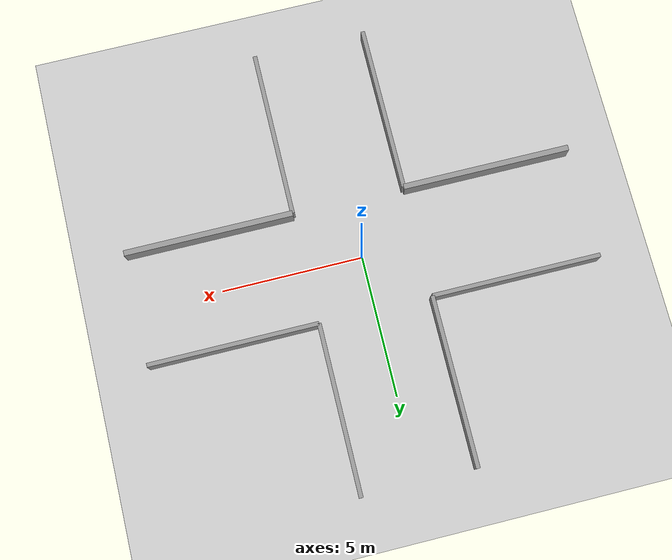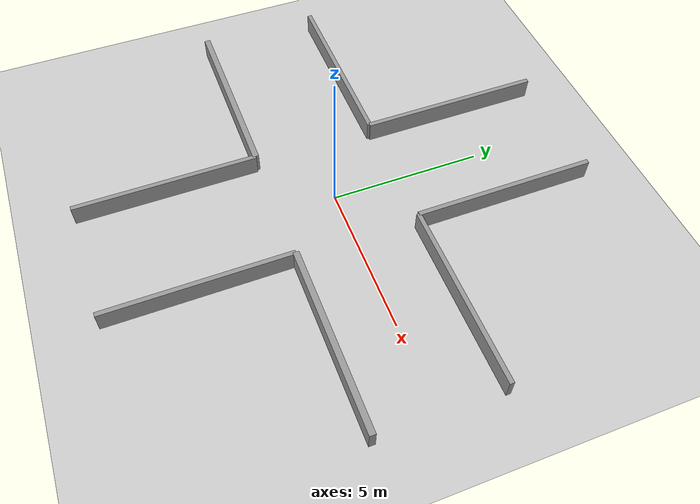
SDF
<sdf version="1.4">
 <world name="default">
  <physics type="ode">
   <gravity>0 0 -9.81</gravity>
   <ode>
    <solver><type>quick</type><iters>50</iters><sor>1.4</sor></solver>
    <constraints>
     <cfm>0.0</cfm>
     <erp>0.2</erp>
     <contact_max_correcting_vel>100.0</contact_max_correcting_vel>
     <contact_surface_layer>0.0</contact_surface_layer>
    </constraints>
   </ode>
   <real_time_update_rate>1000</real_time_update_rate>
   <max_step_size>0.001</max_step_size>
  </physics>
  <include><uri>model://sun</uri></include>
  <include><uri>model://ground_plane</uri></include>
  <model name="wall_1_model">
   <pose>-5 -2 0.35 0 0 0</pose>
   <static>true</static>
   <link name="wall_1_body">
    <inertial>
     <mass>1.0</mass>
     <inertia><ixx>1.0</ixx><ixy>0.0</ixy><ixz>0.0</ixz><iyy>1.0</iyy><iyz>0.0</iyz><izz>1.0</izz></inertia>
    </inertial>
    <collision name="collision"><geometry><box><size>6 0.3 0.7</size></box></geometry></collision>
    <visual name="visual">
     <geometry><box><size>6 0.2 0.7</size></box></geometry>
     <material><script><name>Gazebo/Grey</name></script></material>
    </visual>
   </link>
  </model>
  <model name="wall_2_model">
   <pose>5 -2 0.35 0 0 0</pose>
   <static>true</static>
   <link name="wall_2_body">
    <inertial>
     <mass>1.0</mass>
     <inertia><ixx>1.0</ixx><ixy>0.0</ixy><ixz>0.0</ixz><iyy>1.0</iyy><iyz>0.0</iyz><izz>1.0</izz></inertia>
    </inertial>
    <collision name="collision"><geometry><box><size>6 0.3 0.7</size></box></geometry></collision>
    <visual name="visual">
     <geometry><box><size>6 0.2 0.7</size></box></geometry>
     <material><script><name>Gazebo/Grey</name></script></material>
    </visual>
   </link>
  </model>
  <model name="wall_3_model">
   <pose>-5 2 0.35 0 0 0</pose>
   <static>true</static>
   <link name="wall_3_body">
    <inertial>
     <mass>1.0</mass>
     <inertia><ixx>1.0</ixx><ixy>0.0</ixy><ixz>0.0</ixz><iyy>1.0</iyy><iyz>0.0</iyz><izz>1.0</izz></inertia>
    </inertial>
    <collision name="collision"><geometry><box><size>6 0.3 0.7</size></box></geometry></collision>
    <visual name="visual">
     <geometry><box><size>6 0.15 0.7</size></box></geometry>
     <material><script><name>Gazebo/Grey</name></script></material>
    </visual>
   </link>
  </model>
  <model name="wall_4_model">
   <pose>5 2 0.35 0 0 0</pose>
   <static>true</static>
   <link name="wall_4_body">
    <inertial>
     <mass>1.0</mass>
     <inertia><ixx>1.0</ixx><ixy>0.0</ixy><ixz>0.0</ixz><iyy>1.0</iyy><iyz>0.0</iyz><izz>1.0</izz></inertia>
    </inertial>
    <collision name="collision"><geometry><box><size>6 0.3 0.7</size></box></geometry></collision>
    <visual name="visual">
     <geometry><box><size>6 0.15 0.7</size></box></geometry>
     <material><script><name>Gazebo/Grey</name></script></material>
    </visual>
   </link>
  </model>
  <model name="wall_5_model">
   <pose>-2 5 0.35 0 0 0</pose>
   <static>true</static>
   <link name="wall_5_body">
    <inertial>
     <mass>1.0</mass>
     <inertia><ixx>1.0</ixx><ixy>0.0</ixy><ixz>0.0</ixz><iyy>1.0</iyy><iyz>0.0</iyz><izz>1.0</izz></inertia>
    </inertial>
    <collision name="collision"><geometry><box><size>0.3 6 0.7</size></box></geometry></collision>
    <visual name="visual">
     <geometry><box><size>0.15 6 0.7</size></box></geometry>
     <material><script><name>Gazebo/Grey</name></script></material>
    </visual>
   </link>
  </model>
  <model name="wall_6_model">
   <pose>-2 -5 0.35 0 0 0</pose>
   <static>true</static>
   <link name="wall_6_body">
    <inertial>
     <mass>1.0</mass>
     <inertia><ixx>1.0</ixx><ixy>0.0</ixy><ixz>0.0</ixz><iyy>1.0</iyy><iyz>0.0</iyz><izz>1.0</izz></inertia>
    </inertial>
    <collision name="collision"><geometry><box><size>0.3 6 0.7</size></box></geometry></collision>
    <visual name="visual">
     <geometry><box><size>0.15 6 0.7</size></box></geometry>
     <material><script><name>Gazebo/Grey</name></script></material>
    </visual>
   </link>
  </model>
  <model name="wall_7_model">
   <pose>2 5 0.35 0 0 0</pose>
   <static>true</static>
   <link name="wall_7_body">
    <inertial>
     <mass>1.0</mass>
     <inertia><ixx>1.0</ixx><ixy>0.0</ixy><ixz>0.0</ixz><iyy>1.0</iyy><iyz>0.0</iyz><izz>1.0</izz></inertia>
    </inertial>
    <collision name="collision"><geometry><box><size>0.3 6 0.7</size></box></geometry></collision>
    <visual name="visual">
     <geometry><box><size>0.15 6 0.7</size></box></geometry>
     <material><script><name>Gazebo/Grey</name></script></material>
    </visual>
   </link>
  </model>
  <model name="wall_8_model">
   <pose>2 -5 0.35 0 0 0</pose>
   <static>true</static>
   <link name="wall_8_body">
    <inertial>
     <mass>1.0</mass>
     <inertia><ixx>1.0</ixx><ixy>0.0</ixy><ixz>0.0</ixz><iyy>1.0</iyy><iyz>0.0</iyz><izz>1.0</izz></inertia>
    </inertial>
    <collision name="collision"><geometry><box><size>0.3 6 0.7</size></box></geometry></collision>
    <visual name="visual">
     <geometry><box><size>0.15 6 0.7</size></box></geometry>
     <material><script><name>Gazebo/Grey</name></script></material>
    </visual>
   </link>
  </model>
 </world>
</sdf>
